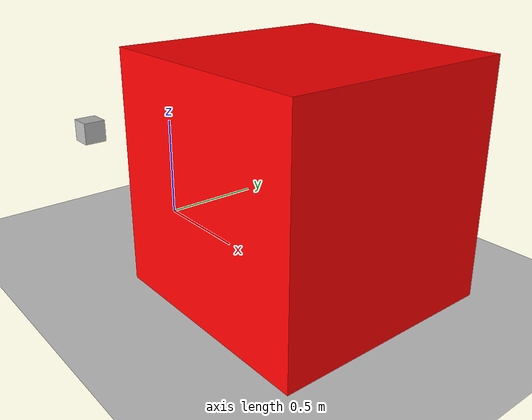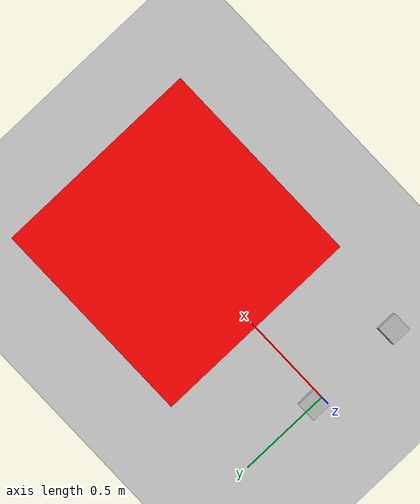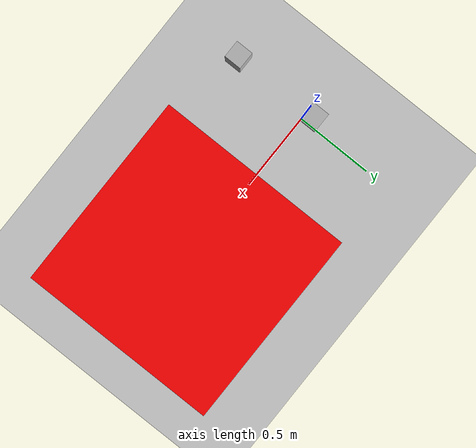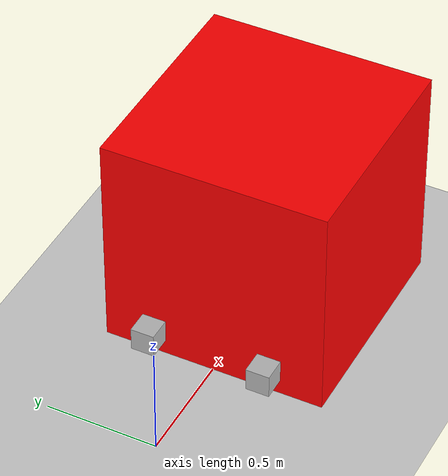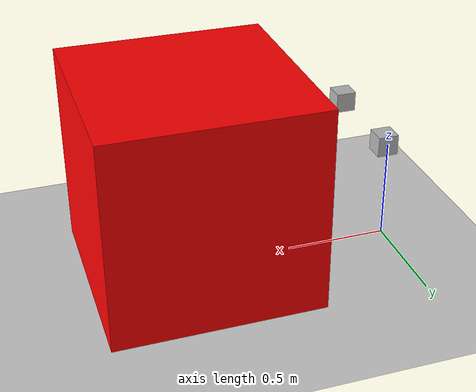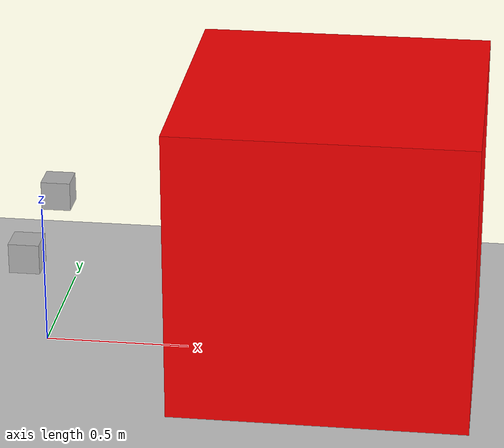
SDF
<?xml version="1.0" ?>

<sdf version="1.6">
  <world name="logical_camera_sensor">
    <physics name="1ms" type="ode">
      <max_step_size>0.001</max_step_size>
      <real_time_factor>0</real_time_factor>
    </physics>
    <plugin
      filename="gz-sim-physics-system"
      name="gz::sim::systems::Physics">
    </plugin>
    <plugin
      filename="gz-sim-logical-camera-system"
      name="gz::sim::systems::LogicalCamera">
      <render_engine>ogre2</render_engine>
    </plugin>

    <light type="directional" name="sun">
      <cast_shadows>true</cast_shadows>
      <pose>0 0 10 0 0 0</pose>
      <diffuse>0.8 0.8 0.8 1</diffuse>
      <specular>0.2 0.2 0.2 1</specular>
      <attenuation>
        <range>1000</range>
        <constant>0.9</constant>
        <linear>0.01</linear>
        <quadratic>0.001</quadratic>
      </attenuation>
      <direction>-0.5 0.1 -0.9</direction>
    </light>

    <model name="ground_plane">
      <static>true</static>
      <link name="link">
        <collision name="collision">
          <geometry>
            <box>
              <size>20 20 0.1</size>
            </box>
          </geometry>
        </collision>
        <visual name="visual">
          <geometry>
            <plane>
              <normal>0 0 1</normal>
              <size>100 100</size>
            </plane>
          </geometry>
          <material>
            <ambient>0.8 0.8 0.8 1</ambient>
            <diffuse>0.8 0.8 0.8 1</diffuse>
            <specular>0.8 0.8 0.8 1</specular>
          </material>
        </visual>
      </link>
    </model>

    <model name="box">
      <pose>1 0 0.5 0 0 0</pose>
      <link name="box_link">
        <inertial>
          <inertia>
            <ixx>1</ixx>
            <ixy>0</ixy>
            <ixz>0</ixz>
            <iyy>1</iyy>
            <iyz>0</iyz>
            <izz>1</izz>
          </inertia>
          <mass>1.0</mass>
        </inertial>
        <collision name="box_collision">
          <geometry>
            <box>
              <size>1 1 1</size>
            </box>
          </geometry>
        </collision>

        <visual name="box_visual">
          <geometry>
            <box>
              <size>1 1 1</size>
            </box>
          </geometry>
          <material>
            <ambient>1 0 0 1</ambient>
            <diffuse>1 0 0 1</diffuse>
            <specular>1 0 0 1</specular>
          </material>
        </visual>
      </link>
    </model>

    <model name="logical_camera-1">
      <static>true</static>
      <pose>0 0 0.5 0 0 0.0 </pose>
      <link name="logical_camera_link">
        <pose>0.05 0.05 0.05 0 0 0</pose>
        <collision name="collision">
          <geometry>
            <box>
              <size>0.1 0.1 0.1</size>
            </box>
          </geometry>
        </collision>
        <visual name="visual">
          <geometry>
            <box>
              <size>0.1 0.1 0.1</size>
            </box>
          </geometry>
        </visual>
        <sensor name='logical_camera-1' type='logical_camera'>"
          <update_rate>10</update_rate>
          <logical_camera>
            <near>0.55</near>
            <far>5</far>
            <horizontal_fov>1.04719755</horizontal_fov>
            <aspect_ratio>1.778</aspect_ratio>
          </logical_camera>
          <visualize>true</visualize>
        </sensor>
      </link>
    </model>
    <model name="logical_camera-2">
      <static>true</static>
      <pose>0 -0.5 0.5 0 0 0.0 </pose>
      <link name="logical_camera_link">
        <pose>0.05 0.05 0.05 0 0 0</pose>
        <collision name="collision">
          <geometry>
            <box>
              <size>0.1 0.1 0.1</size>
            </box>
          </geometry>
        </collision>
        <visual name="visual">
          <geometry>
            <box>
              <size>0.1 0.1 0.1</size>
            </box>
          </geometry>
        </visual>
        <sensor name='logical_camera-2' type='logical_camera'>"
          <update_rate>10</update_rate>
          <logical_camera>
            <near>0.55</near>
            <far>5</far>
            <horizontal_fov>1.04719755</horizontal_fov>
            <aspect_ratio>1.778</aspect_ratio>
          </logical_camera>
          <visualize>true</visualize>
        </sensor>
      </link>
    </model>
  </world>
</sdf>
